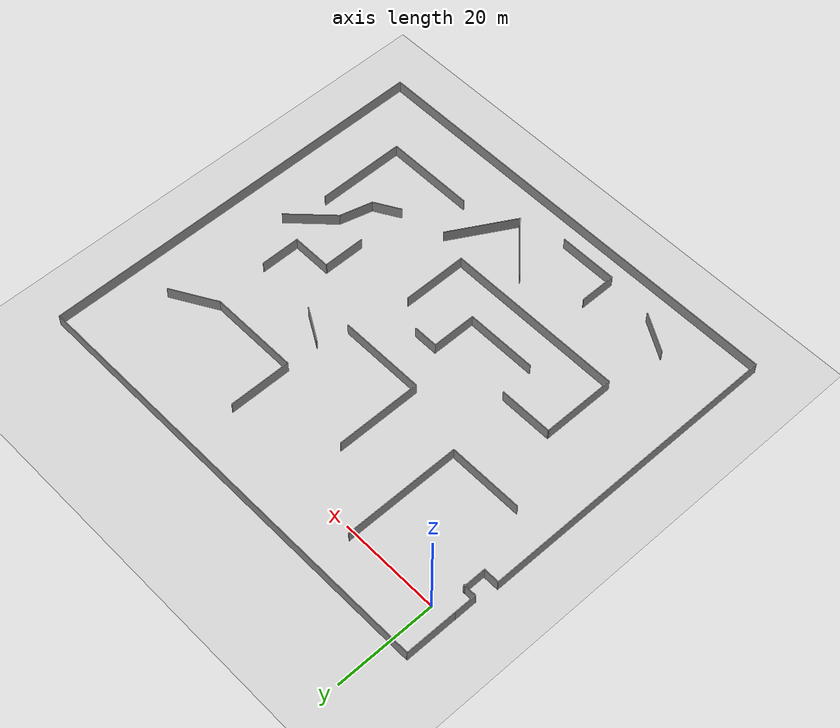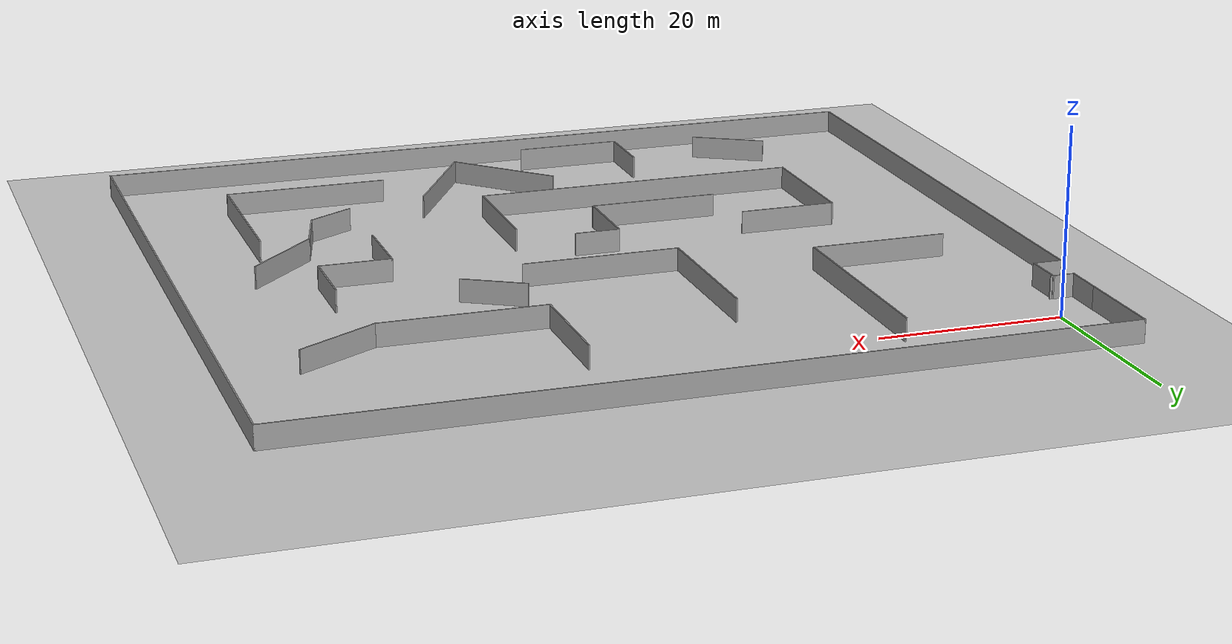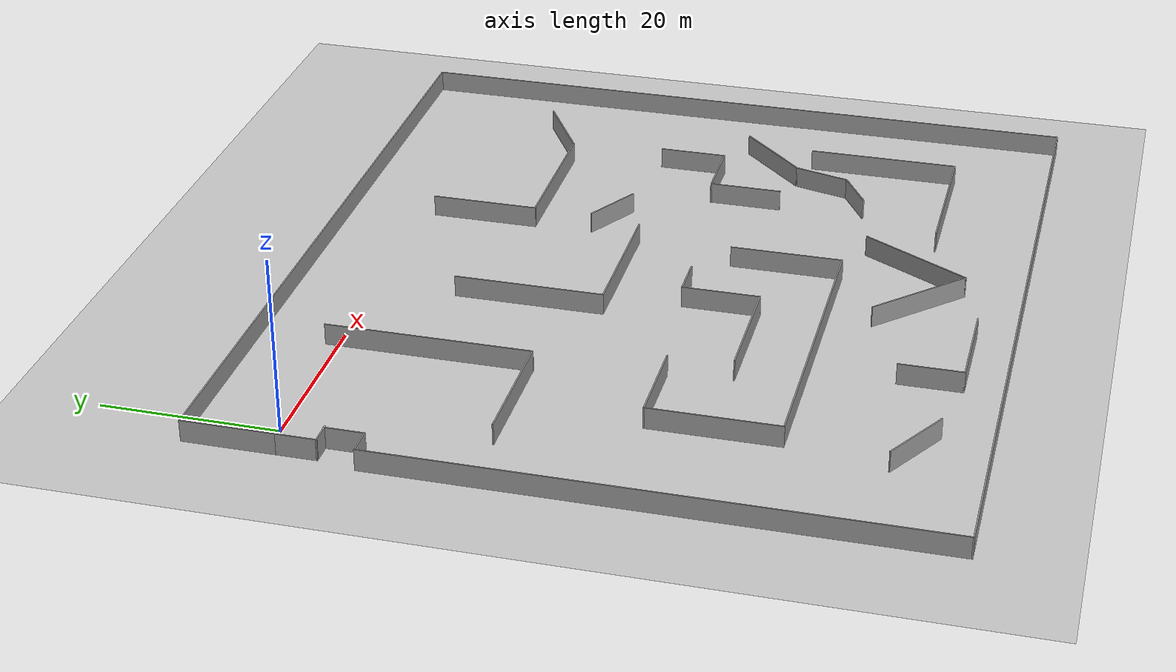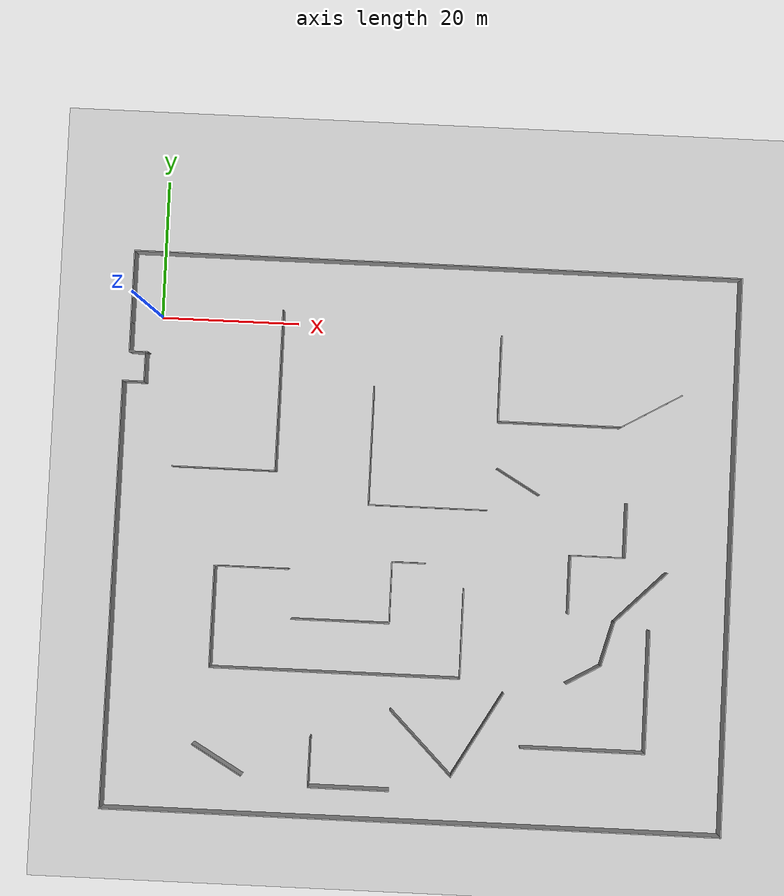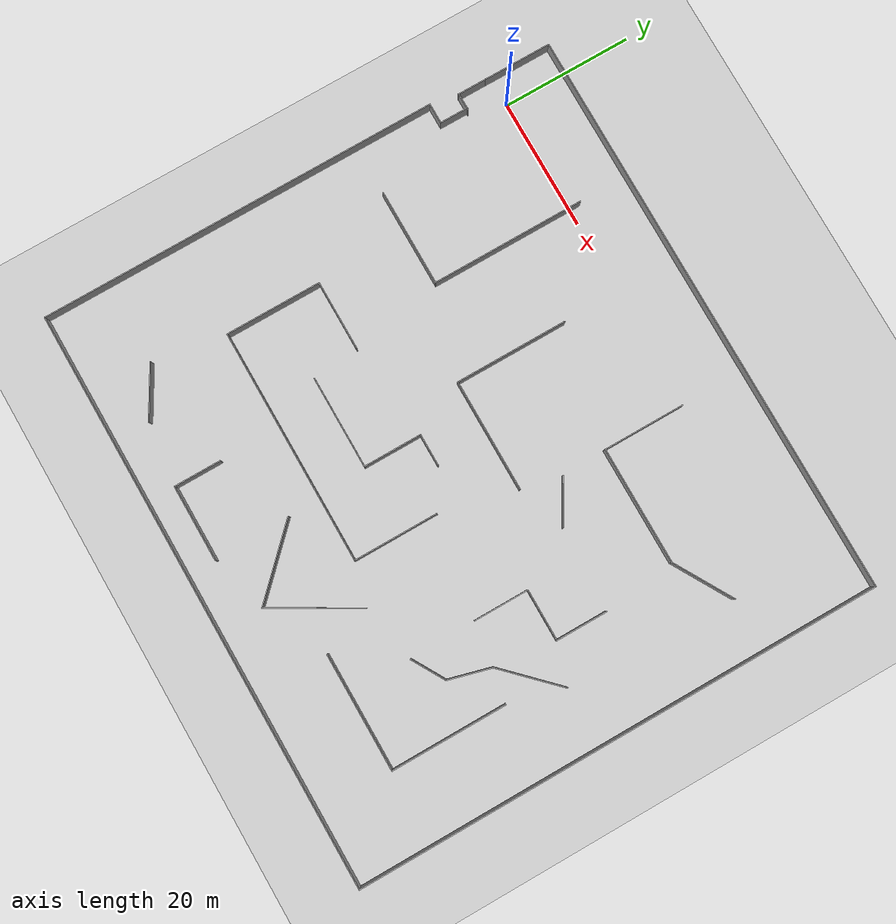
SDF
<sdf version="1.7">
 <world name="default">
  <light name="sun" type="directional">
   <pose>0 0 10 0 -0 0</pose>
   <diffuse>0.8 0.8 0.8 1</diffuse>
   <specular>0.2 0.2 0.2 1</specular>
   <attenuation>
    <range>1000</range>
    <constant>0.9</constant>
    <linear>0.01</linear>
    <quadratic>0.001</quadratic>
   </attenuation>
   <direction>-0.5 0.1 -0.9</direction>
   <spot><inner_angle>0</inner_angle><outer_angle>0</outer_angle><falloff>0</falloff></spot>
  </light>
  <model name="ground_plane">
   <static>1</static>
   <link name="link">
    <collision name="collision">
     <geometry><plane><normal>0 0 1</normal><size>100 100</size></plane></geometry>
     <surface>
      <contact><collide_bitmask>65535</collide_bitmask></contact>
      <friction><ode><mu>100</mu><mu2>50</mu2></ode></friction>
     </surface>
    </collision>
    <visual name="visual">
     <cast_shadows>0</cast_shadows>
     <geometry><plane><normal>0 0 1</normal><size>100 100</size></plane></geometry>
     <material>
      <script><uri>file://media/materials/scripts/gazebo.material</uri><name>Gazebo/Grey</name></script>
     </material>
    </visual>
   </link>
  </model>
  <gravity>0 0 -9.8</gravity>
  <magnetic_field>6e-06 2.3e-05 -4.2e-05</magnetic_field>
  <atmosphere type="adiabatic"/>
  <physics type="ode">
   <max_step_size>0.001</max_step_size>
   <real_time_factor>1</real_time_factor>
   <real_time_update_rate>1000</real_time_update_rate>
  </physics>
  <scene><ambient>0.4 0.4 0.4 1</ambient><background>0.7 0.7 0.7 1</background><shadows>1</shadows></scene>
  <spherical_coordinates>
   <surface_model>EARTH_WGS84</surface_model>
   <latitude_deg>0</latitude_deg>
   <longitude_deg>0</longitude_deg>
   <elevation>0</elevation>
   <heading_deg>0</heading_deg>
  </spherical_coordinates>
  <model name="wall_1">
   <pose>39.67 -31.09 0 0 -0 0</pose>
   <link name="Wall_0">
    <collision name="Wall_0_Collision">
     <geometry><box><size>2.75 0.15 2.5</size></box></geometry>
     <pose>0 0 1.25 0 -0 0</pose>
    </collision>
    <visual name="Wall_0_Visual">
     <pose>0 0 1.25 0 -0 0</pose>
     <geometry><box><size>2.75 0.15 2.5</size></box></geometry>
     <material>
      <script><uri>file://media/materials/scripts/gazebo.material</uri><name>Gazebo/Grey</name></script>
      <ambient>1 1 1 1</ambient>
     </material>
     <meta><layer>0</layer></meta>
    </visual>
    <pose>-42.5 25.6 0 0 -0 3.14159</pose>
   </link>
   <link name="Wall_1">
    <collision name="Wall_1_Collision">
     <geometry><box><size>4.5 0.15 2.5</size></box></geometry>
     <pose>0 0 1.25 0 -0 0</pose>
    </collision>
    <visual name="Wall_1_Visual">
     <pose>0 0 1.25 0 -0 0</pose>
     <geometry><box><size>4.5 0.15 2.5</size></box></geometry>
     <material>
      <script><uri>file://media/materials/scripts/gazebo.material</uri><name>Gazebo/Grey</name></script>
      <ambient>1 1 1 1</ambient>
     </material>
     <meta><layer>0</layer></meta>
    </visual>
    <pose>-43.8 27.775 0 0 -0 1.5708</pose>
   </link>
   <link name="Wall_10">
    <collision name="Wall_10_Collision">
     <geometry><box><size>15 0.15 2.5</size></box></geometry>
     <pose>0 0 1.25 0 -0 0</pose>
    </collision>
    <visual name="Wall_10_Visual">
     <pose>0 0 1.25 0 -0 0</pose>
     <geometry><box><size>15 0.15 2.5</size></box></geometry>
     <material>
      <script><uri>file://media/materials/scripts/gazebo.material</uri><name>Gazebo/Grey</name></script>
      <ambient>1 1 1 1</ambient>
     </material>
     <meta><layer>0</layer></meta>
    </visual>
    <pose>-29.2613 9.25494 0 0 -0 0</pose>
   </link>
   <link name="Wall_11">
    <collision name="Wall_11_Collision">
     <geometry><box><size>23.5 0.15 2.5</size></box></geometry>
     <pose>0 0 1.25 0 -0 0</pose>
    </collision>
    <visual name="Wall_11_Visual">
     <pose>0 0 1.25 0 -0 0</pose>
     <geometry><box><size>23.5 0.15 2.5</size></box></geometry>
     <material>
      <script><uri>file://media/materials/scripts/gazebo.material</uri><name>Gazebo/Grey</name></script>
      <ambient>1 1 1 1</ambient>
     </material>
     <meta><layer>0</layer></meta>
    </visual>
    <pose>-21.8363 20.9299 0 0 -0 1.5708</pose>
   </link>
   <link name="Wall_13">
    <collision name="Wall_13_Collision">
     <geometry><box><size>17.25 0.15 2.5</size></box></geometry>
     <pose>0 0 1.25 0 -0 0</pose>
    </collision>
    <visual name="Wall_13_Visual">
     <pose>0 0 1.25 0 -0 0</pose>
     <geometry><box><size>17.25 0.15 2.5</size></box></geometry>
     <material>
      <script><uri>file://media/materials/scripts/gazebo.material</uri><name>Gazebo/Grey</name></script>
      <ambient>1 1 1 1</ambient>
     </material>
     <meta><layer>0</layer></meta>
    </visual>
    <pose>-8.13681 13.5356 0 0 -0 -1.5708</pose>
   </link>
   <link name="Wall_14">
    <collision name="Wall_14_Collision">
     <geometry><box><size>17.25 0.15 2.5</size></box></geometry>
     <pose>0 0 1.25 0 -0 0</pose>
    </collision>
    <visual name="Wall_14_Visual">
     <pose>0 0 1.25 0 -0 0</pose>
     <geometry><box><size>17.25 0.15 2.5</size></box></geometry>
     <material>
      <script><uri>file://media/materials/scripts/gazebo.material</uri><name>Gazebo/Grey</name></script>
      <ambient>1 1 1 1</ambient>
     </material>
     <meta><layer>0</layer></meta>
    </visual>
    <pose>0.413194 4.9856 0 0 -0 0</pose>
   </link>
   <link name="Wall_16">
    <collision name="Wall_16_Collision">
     <geometry><box><size>10.75 0.15 2.5</size></box></geometry>
     <pose>0 0 1.25 0 -0 0</pose>
    </collision>
    <visual name="Wall_16_Visual">
     <pose>0 0 1.25 0 -0 0</pose>
     <geometry><box><size>10.75 0.15 2.5</size></box></geometry>
     <material>
      <script><uri>file://media/materials/scripts/gazebo.material</uri><name>Gazebo/Grey</name></script>
      <ambient>1 1 1 1</ambient>
     </material>
     <meta><layer>0</layer></meta>
    </visual>
    <pose>-24.5848 -4.83754 0 0 -0 3.14159</pose>
   </link>
   <link name="Wall_17">
    <collision name="Wall_17_Collision">
     <geometry><box><size>14.75 0.15 2.5</size></box></geometry>
     <pose>0 0 1.25 0 -0 0</pose>
    </collision>
    <visual name="Wall_17_Visual">
     <pose>0 0 1.25 0 -0 0</pose>
     <geometry><box><size>14.75 0.15 2.5</size></box></geometry>
     <material>
      <script><uri>file://media/materials/scripts/gazebo.material</uri><name>Gazebo/Grey</name></script>
      <ambient>1 1 1 1</ambient>
     </material>
     <meta><layer>0</layer></meta>
    </visual>
    <pose>-29.8848 -12.1375 0 0 -0 -1.5708</pose>
   </link>
   <link name="Wall_18">
    <collision name="Wall_18_Collision">
     <geometry><box><size>36.25 0.15 2.5</size></box></geometry>
     <pose>0 0 1.25 0 -0 0</pose>
    </collision>
    <visual name="Wall_18_Visual">
     <pose>0 0 1.25 0 -0 0</pose>
     <geometry><box><size>36.25 0.15 2.5</size></box></geometry>
     <material>
      <script><uri>file://media/materials/scripts/gazebo.material</uri><name>Gazebo/Grey</name></script>
      <ambient>1 1 1 1</ambient>
     </material>
     <meta><layer>0</layer></meta>
    </visual>
    <pose>-11.8348 -19.4375 0 0 -0 0</pose>
   </link>
   <link name="Wall_19">
    <collision name="Wall_19_Collision">
     <geometry><box><size>13 0.15 2.5</size></box></geometry>
     <pose>0 0 1.25 0 -0 0</pose>
    </collision>
    <visual name="Wall_19_Visual">
     <pose>0 0 1.25 0 -0 0</pose>
     <geometry><box><size>13 0.15 2.5</size></box></geometry>
     <material>
      <script><uri>file://media/materials/scripts/gazebo.material</uri><name>Gazebo/Grey</name></script>
      <ambient>1 1 1 1</ambient>
     </material>
     <meta><layer>0</layer></meta>
    </visual>
    <pose>6.21518 -13.0125 0 0 -0 1.5708</pose>
   </link>
   <link name="Wall_2">
    <collision name="Wall_2_Collision">
     <geometry><box><size>10.5 0.15 2.5</size></box></geometry>
     <pose>0 0 1.25 0 -0 0</pose>
    </collision>
    <visual name="Wall_2_Visual">
     <pose>0 0 1.25 0 -0 0</pose>
     <geometry><box><size>10.5 0.15 2.5</size></box></geometry>
     <material>
      <script><uri>file://media/materials/scripts/gazebo.material</uri><name>Gazebo/Grey</name></script>
      <ambient>1 1 1 1</ambient>
     </material>
     <meta><layer>0</layer></meta>
    </visual>
    <pose>-43.8 35.125 0 0 -0 1.5708</pose>
   </link>
   <link name="Wall_21">
    <collision name="Wall_21_Collision">
     <geometry><box><size>17.75 0.15 2.5</size></box></geometry>
     <pose>0 0 1.25 0 -0 0</pose>
    </collision>
    <visual name="Wall_21_Visual">
     <pose>0 0 1.25 0 -0 0</pose>
     <geometry><box><size>17.75 0.15 2.5</size></box></geometry>
     <material>
      <script><uri>file://media/materials/scripts/gazebo.material</uri><name>Gazebo/Grey</name></script>
      <ambient>1 1 1 1</ambient>
     </material>
     <meta><layer>0</layer></meta>
    </visual>
    <pose>33.2362 -20.1093 0 0 -0 -1.5708</pose>
   </link>
   <link name="Wall_22">
    <collision name="Wall_22_Collision">
     <geometry><box><size>18 0.15 2.5</size></box></geometry>
     <pose>0 0 1.25 0 -0 0</pose>
    </collision>
    <visual name="Wall_22_Visual">
     <pose>0 0 1.25 0 -0 0</pose>
     <geometry><box><size>18 0.15 2.5</size></box></geometry>
     <material>
      <script><uri>file://media/materials/scripts/gazebo.material</uri><name>Gazebo/Grey</name></script>
      <ambient>1 1 1 1</ambient>
     </material>
     <meta><layer>0</layer></meta>
    </visual>
    <pose>24.3112 -28.9093 0 0 -0 3.14159</pose>
   </link>
   <link name="Wall_24">
    <collision name="Wall_24_Collision">
     <geometry><box><size>12.5 0.15 2.5</size></box></geometry>
     <pose>0 0 1.25 0 -0 0</pose>
    </collision>
    <visual name="Wall_24_Visual">
     <pose>0 0 1.25 0 -0 0</pose>
     <geometry><box><size>12.5 0.15 2.5</size></box></geometry>
     <material>
      <script><uri>file://media/materials/scripts/gazebo.material</uri><name>Gazebo/Grey</name></script>
      <ambient>1 1 1 1</ambient>
     </material>
     <meta><layer>0</layer></meta>
    </visual>
    <pose>10.0871 24.0844 0 0 -0 -1.5708</pose>
   </link>
   <link name="Wall_25">
    <collision name="Wall_25_Collision">
     <geometry><box><size>18 0.15 2.5</size></box></geometry>
     <pose>0 0 1.25 0 -0 0</pose>
    </collision>
    <visual name="Wall_25_Visual">
     <pose>0 0 1.25 0 -0 0</pose>
     <geometry><box><size>18 0.15 2.5</size></box></geometry>
     <material>
      <script><uri>file://media/materials/scripts/gazebo.material</uri><name>Gazebo/Grey</name></script>
      <ambient>1 1 1 1</ambient>
     </material>
     <meta><layer>0</layer></meta>
    </visual>
    <pose>19.0121 17.9094 0 0 -0 0</pose>
   </link>
   <link name="Wall_26">
    <collision name="Wall_26_Collision">
     <geometry><box><size>10 0.15 2.5</size></box></geometry>
     <pose>0 0 1.25 0 -0 0</pose>
    </collision>
    <visual name="Wall_26_Visual">
     <pose>0 0 1.25 0 -0 0</pose>
     <geometry><box><size>10 0.15 2.5</size></box></geometry>
     <material>
      <script><uri>file://media/materials/scripts/gazebo.material</uri><name>Gazebo/Grey</name></script>
      <ambient>1 1 1 1</ambient>
     </material>
     <meta><layer>0</layer></meta>
    </visual>
    <pose>32.2023 20.3719 0 0 -0 0.523599</pose>
   </link>
   <link name="Wall_28">
    <collision name="Wall_28_Collision">
     <geometry><box><size>8 0.15 2.5</size></box></geometry>
     <pose>0 0 1.25 0 -0 0</pose>
    </collision>
    <visual name="Wall_28_Visual">
     <pose>0 0 1.25 0 -0 0</pose>
     <geometry><box><size>8 0.15 2.5</size></box></geometry>
     <material>
      <script><uri>file://media/materials/scripts/gazebo.material</uri><name>Gazebo/Grey</name></script>
      <ambient>1 1 1 1</ambient>
     </material>
     <meta><layer>0</layer></meta>
    </visual>
    <pose>29.2535 2.93644 0 0 -0 -1.5708</pose>
   </link>
   <link name="Wall_29">
    <collision name="Wall_29_Collision">
     <geometry><box><size>8 0.15 2.5</size></box></geometry>
     <pose>0 0 1.25 0 -0 0</pose>
    </collision>
    <visual name="Wall_29_Visual">
     <pose>0 0 1.25 0 -0 0</pose>
     <geometry><box><size>8 0.15 2.5</size></box></geometry>
     <material>
      <script><uri>file://media/materials/scripts/gazebo.material</uri><name>Gazebo/Grey</name></script>
      <ambient>1 1 1 1</ambient>
     </material>
     <meta><layer>0</layer></meta>
    </visual>
    <pose>25.3285 -0.98856 0 0 -0 3.14159</pose>
   </link>
   <link name="Wall_3">
    <collision name="Wall_3_Collision">
     <geometry><box><size>88.5 0.15 2.5</size></box></geometry>
     <pose>0 0 1.25 0 -0 0</pose>
    </collision>
    <visual name="Wall_3_Visual">
     <pose>0 0 1.25 0 -0 0</pose>
     <geometry><box><size>88.5 0.15 2.5</size></box></geometry>
     <material>
      <script><uri>file://media/materials/scripts/gazebo.material</uri><name>Gazebo/Grey</name></script>
      <ambient>1 1 1 1</ambient>
     </material>
     <meta><layer>0</layer></meta>
    </visual>
    <pose>0.374997 40.3 0 0 -0 0</pose>
   </link>
   <link name="Wall_30">
    <collision name="Wall_30_Collision">
     <geometry><box><size>8.5 0.15 2.5</size></box></geometry>
     <pose>0 0 1.25 0 -0 0</pose>
    </collision>
    <visual name="Wall_30_Visual">
     <pose>0 0 1.25 0 -0 0</pose>
     <geometry><box><size>8.5 0.15 2.5</size></box></geometry>
     <material>
      <script><uri>file://media/materials/scripts/gazebo.material</uri><name>Gazebo/Grey</name></script>
      <ambient>1 1 1 1</ambient>
     </material>
     <meta><layer>0</layer></meta>
    </visual>
    <pose>21.4035 -5.16356 0 0 -0 -1.5708</pose>
   </link>
   <link name="Wall_32">
    <collision name="Wall_32_Collision">
     <geometry><box><size>7.25 0.15 2.5</size></box></geometry>
     <pose>0 0 1.25 0 -0 0</pose>
    </collision>
    <visual name="Wall_32_Visual">
     <pose>0 0 1.25 0 -0 0</pose>
     <geometry><box><size>7.25 0.15 2.5</size></box></geometry>
     <material>
      <script><uri>file://media/materials/scripts/gazebo.material</uri><name>Gazebo/Grey</name></script>
      <ambient>1 1 1 1</ambient>
     </material>
     <meta><layer>0</layer></meta>
    </visual>
    <pose>-14.8911 -32.3614 0 0 -0 -1.5708</pose>
   </link>
   <link name="Wall_33">
    <collision name="Wall_33_Collision">
     <geometry><box><size>11.75 0.15 2.5</size></box></geometry>
     <pose>0 0 1.25 0 -0 0</pose>
    </collision>
    <visual name="Wall_33_Visual">
     <pose>0 0 1.25 0 -0 0</pose>
     <geometry><box><size>11.75 0.15 2.5</size></box></geometry>
     <material>
      <script><uri>file://media/materials/scripts/gazebo.material</uri><name>Gazebo/Grey</name></script>
      <ambient>1 1 1 1</ambient>
     </material>
     <meta><layer>0</layer></meta>
    </visual>
    <pose>-9.09112 -35.9113 0 0 -0 0</pose>
   </link>
   <link name="Wall_35">
    <collision name="Wall_35_Collision">
     <geometry><box><size>8.5 0.15 2.5</size></box></geometry>
     <pose>0 0 1.25 0 -0 0</pose>
    </collision>
    <visual name="Wall_35_Visual">
     <pose>0 0 1.25 0 -0 0</pose>
     <geometry><box><size>8.5 0.15 2.5</size></box></geometry>
     <material>
      <script><uri>file://media/materials/scripts/gazebo.material</uri><name>Gazebo/Grey</name></script>
      <ambient>1 1 1 1</ambient>
     </material>
     <meta><layer>0</layer></meta>
    </visual>
    <pose>-28.1584 -32.6304 0 0 -0 -0.523599</pose>
   </link>
   <link name="Wall_37">
    <collision name="Wall_37_Collision">
     <geometry><box><size>14.25 0.15 2.5</size></box></geometry>
     <pose>0 0 1.25 0 -0 0</pose>
    </collision>
    <visual name="Wall_37_Visual">
     <pose>0 0 1.25 0 -0 0</pose>
     <geometry><box><size>14.25 0.15 2.5</size></box></geometry>
     <material>
      <script><uri>file://media/materials/scripts/gazebo.material</uri><name>Gazebo/Grey</name></script>
      <ambient>1 1 1 1</ambient>
     </material>
     <meta><layer>0</layer></meta>
    </visual>
    <pose>-11.3839 -11.9828 0 0 -0 0</pose>
   </link>
   <link name="Wall_38">
    <collision name="Wall_38_Collision">
     <geometry><box><size>9 0.15 2.5</size></box></geometry>
     <pose>0 0 1.25 0 -0 0</pose>
    </collision>
    <visual name="Wall_38_Visual">
     <pose>0 0 1.25 0 -0 0</pose>
     <geometry><box><size>9 0.15 2.5</size></box></geometry>
     <material>
      <script><uri>file://media/materials/scripts/gazebo.material</uri><name>Gazebo/Grey</name></script>
      <ambient>1 1 1 1</ambient>
     </material>
     <meta><layer>0</layer></meta>
    </visual>
    <pose>-4.33394 -7.5578 0 0 -0 1.5708</pose>
   </link>
   <link name="Wall_39">
    <collision name="Wall_39_Collision">
     <geometry><box><size>5 0.15 2.5</size></box></geometry>
     <pose>0 0 1.25 0 -0 0</pose>
    </collision>
    <visual name="Wall_39_Visual">
     <pose>0 0 1.25 0 -0 0</pose>
     <geometry><box><size>5 0.15 2.5</size></box></geometry>
     <material>
      <script><uri>file://media/materials/scripts/gazebo.material</uri><name>Gazebo/Grey</name></script>
      <ambient>1 1 1 1</ambient>
     </material>
     <meta><layer>0</layer></meta>
    </visual>
    <pose>-1.90894 -3.13279 0 0 -0 0</pose>
   </link>
   <link name="Wall_4">
    <collision name="Wall_4_Collision">
     <geometry><box><size>80.75 0.15 2.5</size></box></geometry>
     <pose>0 0 1.25 0 -0 0</pose>
    </collision>
    <visual name="Wall_4_Visual">
     <pose>0 0 1.25 0 -0 0</pose>
     <geometry><box><size>80.75 0.15 2.5</size></box></geometry>
     <material>
      <script><uri>file://media/materials/scripts/gazebo.material</uri><name>Gazebo/Grey</name></script>
      <ambient>1 1 1 1</ambient>
     </material>
     <meta><layer>0</layer></meta>
    </visual>
    <pose>44.55 0 0 0 -0 -1.5708</pose>
   </link>
   <link name="Wall_41">
    <collision name="Wall_41_Collision">
     <geometry><box><size>13 0.15 2.5</size></box></geometry>
     <pose>0 0 1.25 0 -0 0</pose>
    </collision>
    <visual name="Wall_41_Visual">
     <pose>0 0 1.25 0 -0 0</pose>
     <geometry><box><size>13 0.15 2.5</size></box></geometry>
     <material>
      <script><uri>file://media/materials/scripts/gazebo.material</uri><name>Gazebo/Grey</name></script>
      <ambient>1 1 1 1</ambient>
     </material>
     <meta><layer>0</layer></meta>
    </visual>
    <pose>0.996064 -28.9593 0 0 -0 -0.785398</pose>
   </link>
   <link name="Wall_42">
    <collision name="Wall_42_Collision">
     <geometry><box><size>14.25 0.15 2.5</size></box></geometry>
     <pose>0 0 1.25 0 -0 0</pose>
    </collision>
    <visual name="Wall_42_Visual">
     <pose>0 0 1.25 0 -0 0</pose>
     <geometry><box><size>14.25 0.15 2.5</size></box></geometry>
     <material>
      <script><uri>file://media/materials/scripts/gazebo.material</uri><name>Gazebo/Grey</name></script>
      <ambient>1 1 1 1</ambient>
     </material>
     <meta><layer>0</layer></meta>
    </visual>
    <pose>9.06423 -27.397 0 0 -0 1.0472</pose>
   </link>
   <link name="Wall_44">
    <collision name="Wall_44_Collision">
     <geometry><box><size>5.75 0.15 2.5</size></box></geometry>
     <pose>0 0 1.25 0 -0 0</pose>
    </collision>
    <visual name="Wall_44_Visual">
     <pose>0 0 1.25 0 -0 0</pose>
     <geometry><box><size>5.75 0.15 2.5</size></box></geometry>
     <material>
      <script><uri>file://media/materials/scripts/gazebo.material</uri><name>Gazebo/Grey</name></script>
      <ambient>1 1 1 1</ambient>
     </material>
     <meta><layer>0</layer></meta>
    </visual>
    <pose>23.9857 -18.0378 0 0 -0 0.523599</pose>
   </link>
   <link name="Wall_45">
    <collision name="Wall_45_Collision">
     <geometry><box><size>6.75 0.15 2.5</size></box></geometry>
     <pose>0 0 1.25 0 -0 0</pose>
    </collision>
    <visual name="Wall_45_Visual">
     <pose>0 0 1.25 0 -0 0</pose>
     <geometry><box><size>6.75 0.15 2.5</size></box></geometry>
     <material>
      <script><uri>file://media/materials/scripts/gazebo.material</uri><name>Gazebo/Grey</name></script>
      <ambient>1 1 1 1</ambient>
     </material>
     <meta><layer>0</layer></meta>
    </visual>
    <pose>27.2647 -13.4503 0 0 -0 1.309</pose>
   </link>
   <link name="Wall_46">
    <collision name="Wall_46_Collision">
     <geometry><box><size>10.5 0.15 2.5</size></box></geometry>
     <pose>0 0 1.25 0 -0 0</pose>
    </collision>
    <visual name="Wall_46_Visual">
     <pose>0 0 1.25 0 -0 0</pose>
     <geometry><box><size>10.5 0.15 2.5</size></box></geometry>
     <material>
      <script><uri>file://media/materials/scripts/gazebo.material</uri><name>Gazebo/Grey</name></script>
      <ambient>1 1 1 1</ambient>
     </material>
     <meta><layer>0</layer></meta>
    </visual>
    <pose>31.778 -6.60344 0 0 -0 0.785398</pose>
   </link>
   <link name="Wall_48">
    <collision name="Wall_48_Collision">
     <geometry><box><size>7.25 0.15 2.5</size></box></geometry>
     <pose>0 0 1.25 0 -0 0</pose>
    </collision>
    <visual name="Wall_48_Visual">
     <pose>0 0 1.25 0 -0 0</pose>
     <geometry><box><size>7.25 0.15 2.5</size></box></geometry>
     <material>
      <script><uri>file://media/materials/scripts/gazebo.material</uri><name>Gazebo/Grey</name></script>
      <ambient>1 1 1 1</ambient>
     </material>
     <meta><layer>0</layer></meta>
    </visual>
    <pose>13.3799 9.30626 0 0 -0 -0.523599</pose>
   </link>
   <link name="Wall_5">
    <collision name="Wall_5_Collision">
     <geometry><box><size>89.25 0.15 2.5</size></box></geometry>
     <pose>0 0 1.25 0 -0 0</pose>
    </collision>
    <visual name="Wall_5_Visual">
     <pose>0 0 1.25 0 -0 0</pose>
     <geometry><box><size>89.25 0.15 2.5</size></box></geometry>
     <material>
      <script><uri>file://media/materials/scripts/gazebo.material</uri><name>Gazebo/Grey</name></script>
      <ambient>1 1 1 1</ambient>
     </material>
     <meta><layer>0</layer></meta>
    </visual>
    <pose>-3e-06 -40.3 0 0 -0 3.14159</pose>
   </link>
   <link name="Wall_6">
    <collision name="Wall_6_Collision">
     <geometry><box><size>61.75 0.15 2.5</size></box></geometry>
     <pose>0 0 1.25 0 -0 0</pose>
    </collision>
    <visual name="Wall_6_Visual">
     <pose>0 0 1.25 0 -0 0</pose>
     <geometry><box><size>61.75 0.15 2.5</size></box></geometry>
     <material>
      <script><uri>file://media/materials/scripts/gazebo.material</uri><name>Gazebo/Grey</name></script>
      <ambient>1 1 1 1</ambient>
     </material>
     <meta><layer>0</layer></meta>
    </visual>
    <pose>-44.55 -9.5 0 0 -0 1.5708</pose>
   </link>
   <link name="Wall_7">
    <collision name="Wall_7_Collision">
     <geometry><box><size>3.25 0.15 2.5</size></box></geometry>
     <pose>0 0 1.25 0 -0 0</pose>
    </collision>
    <visual name="Wall_7_Visual">
     <pose>0 0 1.25 0 -0 0</pose>
     <geometry><box><size>3.25 0.15 2.5</size></box></geometry>
     <material>
      <script><uri>file://media/materials/scripts/gazebo.material</uri><name>Gazebo/Grey</name></script>
      <ambient>1 1 1 1</ambient>
     </material>
     <meta><layer>0</layer></meta>
    </visual>
    <pose>-43 21.3 0 0 -0 0</pose>
   </link>
   <link name="Wall_8">
    <collision name="Wall_8_Collision">
     <geometry><box><size>4.5 0.15 2.5</size></box></geometry>
     <pose>0 0 1.25 0 -0 0</pose>
    </collision>
    <visual name="Wall_8_Visual">
     <pose>0 0 1.25 0 -0 0</pose>
     <geometry><box><size>4.5 0.15 2.5</size></box></geometry>
     <material>
      <script><uri>file://media/materials/scripts/gazebo.material</uri><name>Gazebo/Grey</name></script>
      <ambient>1 1 1 1</ambient>
     </material>
     <meta><layer>0</layer></meta>
    </visual>
    <pose>-41.45 23.475 0 0 -0 1.5708</pose>
   </link>
   <static>1</static>
  </model>
 </world>
</sdf>
